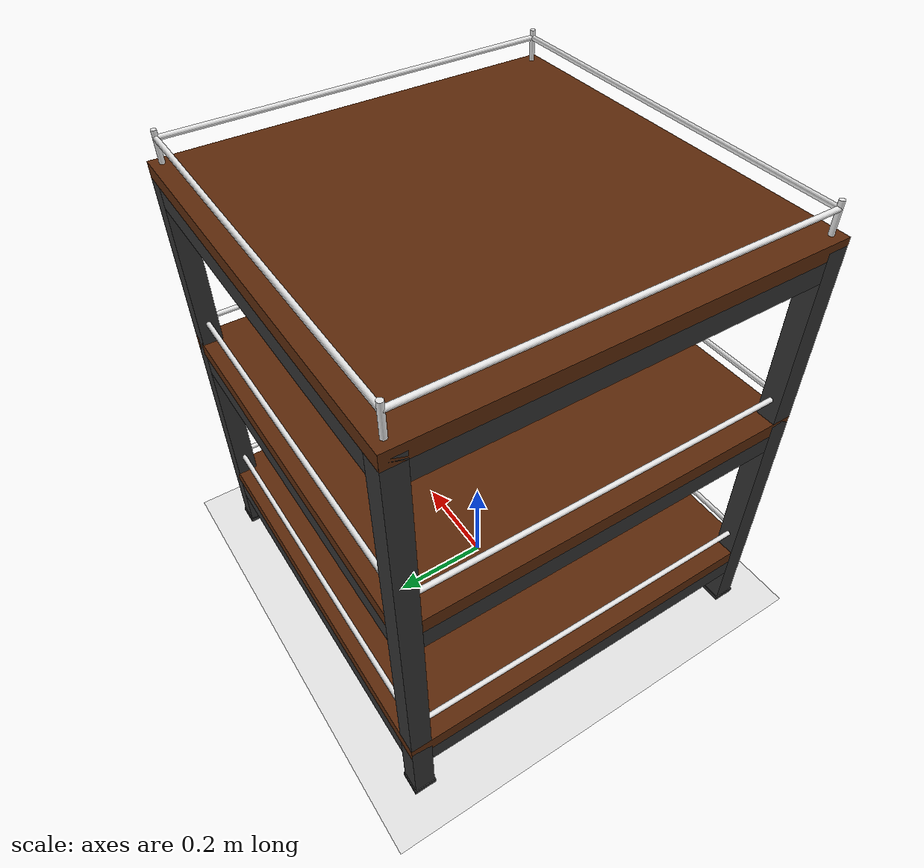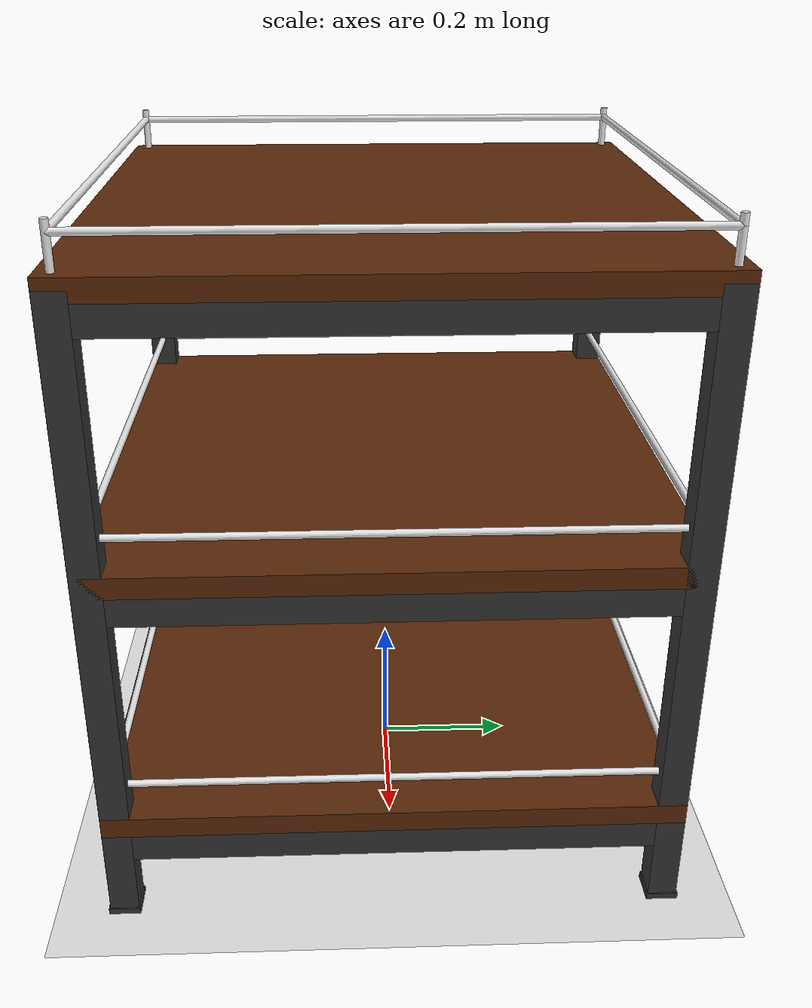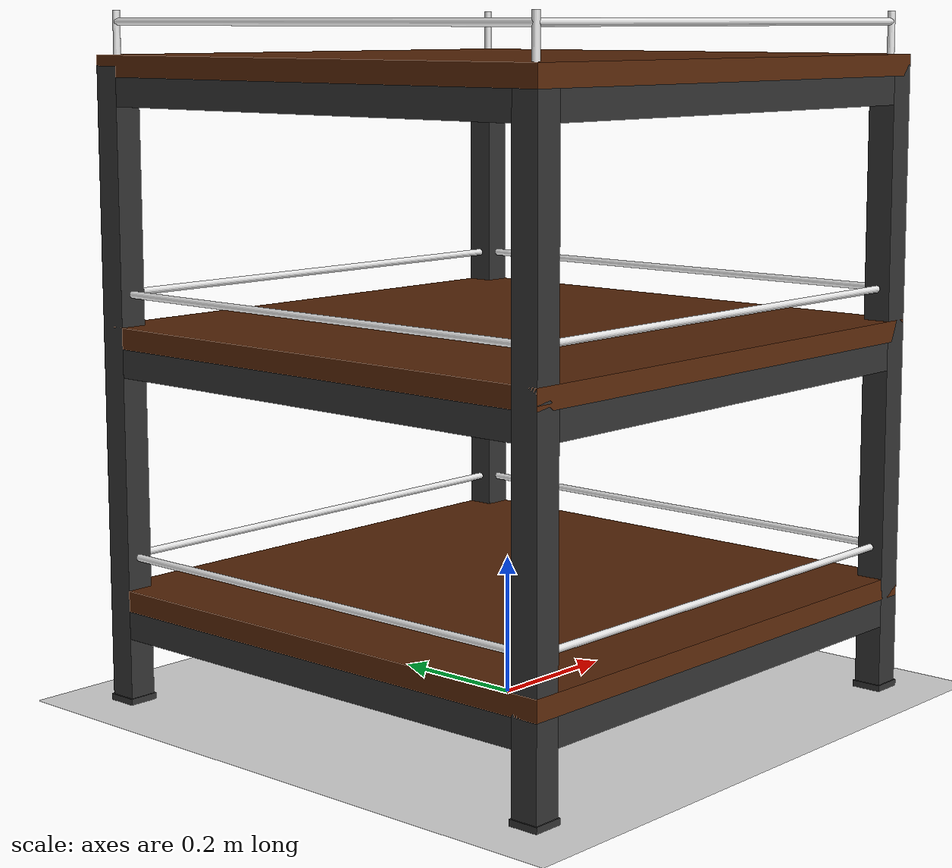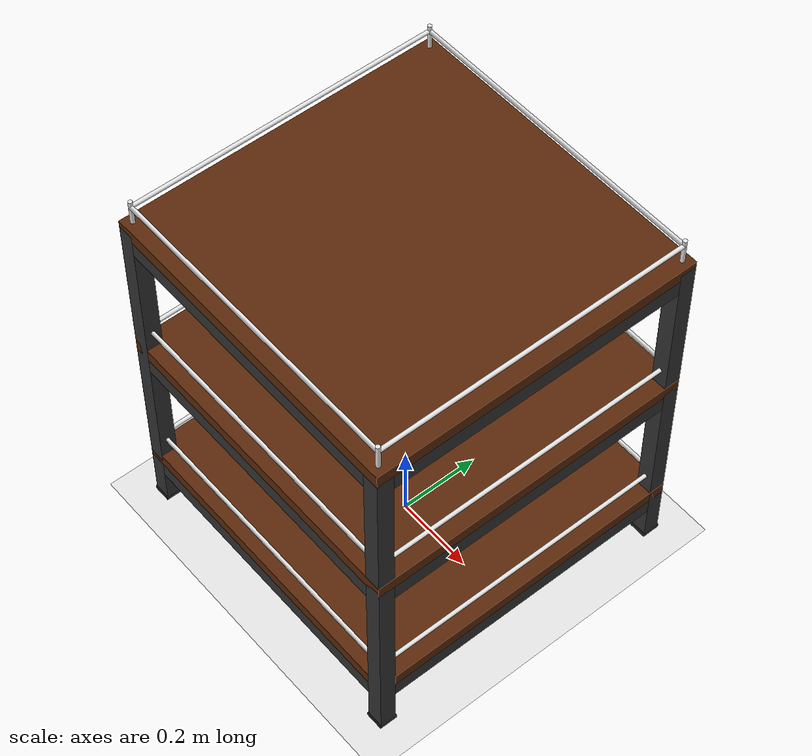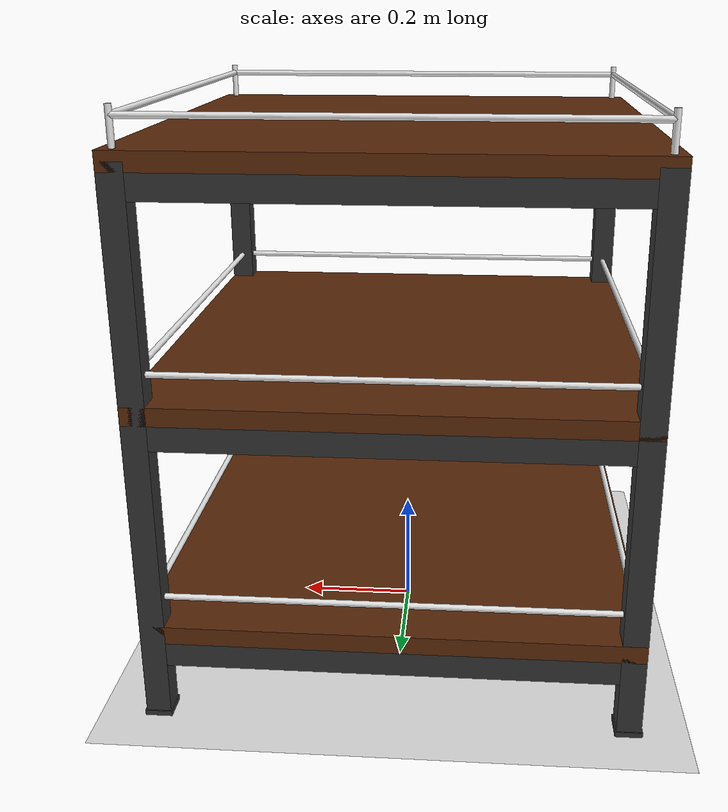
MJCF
<mujoco model="promotion_rack_3tier">
  <compiler angle="degree" coordinate="local" />
  <option timestep="0.01" gravity="0 0 -9.81" />

  <asset>
    <!-- Materials based on visual description: Dark frame, Teak wood shelves, White railings -->
    <material name="mat_frame" rgba="0.2 0.2 0.2 1" specular="0.5" shininess="0.5" />
    <material name="mat_wood" rgba="0.6 0.4 0.2 1" specular="0.1" shininess="0.1" texture="tex_wood_procedural" />
    <material name="mat_rail" rgba="0.9 0.9 0.9 1" specular="0.8" shininess="0.8" />

    <!-- Procedural wood texture for better look -->
    <texture name="tex_wood_procedural" type="cube" builtin="flat" rgb1="0.6 0.4 0.2" rgb2="0.5 0.3 0.1" width="512" height="512" mark="random" markrgb="0.4 0.3 0.2"/>
  </asset>

  <default>
    <default class="leg">
      <geom type="box" size="0.02 0.02 0.45" material="mat_frame" />
    </default>
    <default class="shelf">
      <geom type="box" size="0.4 0.4 0.015" material="mat_wood" />
    </default>
    <default class="rail_post">
      <geom type="cylinder" size="0.005 0.03" material="mat_rail" />
    </default>
    <default class="rail_bar">
      <geom type="capsule" size="0.005 0.38" material="mat_rail" /> <!-- Length fits between posts -->
    </default>
  </default>

  <worldbody>
    <!-- Lighting -->
    <light pos="2 2 4" dir="0 0 -1" diffuse="0.8 0.8 0.8" />
    <!-- Floor for reference -->
    <geom name="floor" type="plane" size="2 2 0.1" rgba="0.9 0.9 0.9 0.5" />

    <body name="rack_unit" pos="0 0 0">
      <!-- LEGS (H=900mm) -->
      <!-- Front Left -->
      <geom name="leg_FL" class="leg" pos="0.38 0.38 0.45" />
      <!-- Front Right -->
      <geom name="leg_FR" class="leg" pos="0.38 -0.38 0.45" />
      <!-- Back Left -->
      <geom name="leg_BL" class="leg" pos="-0.38 0.38 0.45" />
      <!-- Back Right -->
      <geom name="leg_BR" class="leg" pos="-0.38 -0.38 0.45" />

      <!-- SHELF 1 (Bottom) -->
      <body name="shelf_1_body" pos="0 0 0.15">
        <geom name="shelf_1" class="shelf" />
        <!-- Frame supports under shelf -->
        <geom name="support_1_f" type="box" size="0.02 0.36 0.02" pos="0.38 0 -0.035" material="mat_frame" />
        <geom name="support_1_b" type="box" size="0.02 0.36 0.02" pos="-0.38 0 -0.035" material="mat_frame" />
        <geom name="support_1_l" type="box" size="0.36 0.02 0.02" pos="0 0.38 -0.035" material="mat_frame" />
        <geom name="support_1_r" type="box" size="0.36 0.02 0.02" pos="0 -0.38 -0.035" material="mat_frame" />

        <!-- Railings -->
        <!-- Posts -->
        <geom name="s1_post_fl" class="rail_post" pos="0.38 0.38 0.045" />
        <geom name="s1_post_fr" class="rail_post" pos="0.38 -0.38 0.045" />
        <geom name="s1_post_bl" class="rail_post" pos="-0.38 0.38 0.045" />
        <geom name="s1_post_br" class="rail_post" pos="-0.38 -0.38 0.045" />
        <!-- Bars -->
        <geom name="s1_rail_f" class="rail_bar" pos="0.38 0 0.06" euler="90 0 0" />
        <geom name="s1_rail_b" class="rail_bar" pos="-0.38 0 0.06" euler="90 0 0" />
        <geom name="s1_rail_l" class="rail_bar" pos="0 0.38 0.06" euler="0 90 0" />
        <geom name="s1_rail_r" class="rail_bar" pos="0 -0.38 0.06" euler="0 90 0" />
      </body>

      <!-- SHELF 2 (Middle) -->
      <body name="shelf_2_body" pos="0 0 0.525">
        <geom name="shelf_2" class="shelf" />
        <!-- Frame supports -->
        <geom name="support_2_f" type="box" size="0.02 0.36 0.02" pos="0.38 0 -0.035" material="mat_frame" />
        <geom name="support_2_b" type="box" size="0.02 0.36 0.02" pos="-0.38 0 -0.035" material="mat_frame" />
        <geom name="support_2_l" type="box" size="0.36 0.02 0.02" pos="0 0.38 -0.035" material="mat_frame" />
        <geom name="support_2_r" type="box" size="0.36 0.02 0.02" pos="0 -0.38 -0.035" material="mat_frame" />

        <!-- Railings -->
        <geom name="s2_post_fl" class="rail_post" pos="0.38 0.38 0.045" />
        <geom name="s2_post_fr" class="rail_post" pos="0.38 -0.38 0.045" />
        <geom name="s2_post_bl" class="rail_post" pos="-0.38 0.38 0.045" />
        <geom name="s2_post_br" class="rail_post" pos="-0.38 -0.38 0.045" />
        <geom name="s2_rail_f" class="rail_bar" pos="0.38 0 0.06" euler="90 0 0" />
        <geom name="s2_rail_b" class="rail_bar" pos="-0.38 0 0.06" euler="90 0 0" />
        <geom name="s2_rail_l" class="rail_bar" pos="0 0.38 0.06" euler="0 90 0" />
        <geom name="s2_rail_r" class="rail_bar" pos="0 -0.38 0.06" euler="0 90 0" />
      </body>

      <!-- SHELF 3 (Top) -->
      <body name="shelf_3_body" pos="0 0 0.9">
        <geom name="shelf_3" class="shelf" />
        <!-- Frame supports -->
        <geom name="support_3_f" type="box" size="0.02 0.36 0.02" pos="0.38 0 -0.035" material="mat_frame" />
        <geom name="support_3_b" type="box" size="0.02 0.36 0.02" pos="-0.38 0 -0.035" material="mat_frame" />
        <geom name="support_3_l" type="box" size="0.36 0.02 0.02" pos="0 0.38 -0.035" material="mat_frame" />
        <geom name="support_3_r" type="box" size="0.36 0.02 0.02" pos="0 -0.38 -0.035" material="mat_frame" />

        <!-- Railings -->
        <geom name="s3_post_fl" class="rail_post" pos="0.38 0.38 0.045" />
        <geom name="s3_post_fr" class="rail_post" pos="0.38 -0.38 0.045" />
        <geom name="s3_post_bl" class="rail_post" pos="-0.38 0.38 0.045" />
        <geom name="s3_post_br" class="rail_post" pos="-0.38 -0.38 0.045" />
        <geom name="s3_rail_f" class="rail_bar" pos="0.38 0 0.06" euler="90 0 0" />
        <geom name="s3_rail_b" class="rail_bar" pos="-0.38 0 0.06" euler="90 0 0" />
        <geom name="s3_rail_l" class="rail_bar" pos="0 0.38 0.06" euler="0 90 0" />
        <geom name="s3_rail_r" class="rail_bar" pos="0 -0.38 0.06" euler="0 90 0" />
      </body>

      <!-- Feet -->
      <geom name="foot_fl" type="box" size="0.022 0.022 0.005" pos="0.38 0.38 0.0025" material="mat_frame" />
      <geom name="foot_fr" type="box" size="0.022 0.022 0.005" pos="0.38 -0.38 0.0025" material="mat_frame" />
      <geom name="foot_bl" type="box" size="0.022 0.022 0.005" pos="-0.38 0.38 0.0025" material="mat_frame" />
      <geom name="foot_br" type="box" size="0.022 0.022 0.005" pos="-0.38 -0.38 0.0025" material="mat_frame" />

    </body>
  </worldbody>
</mujoco>
